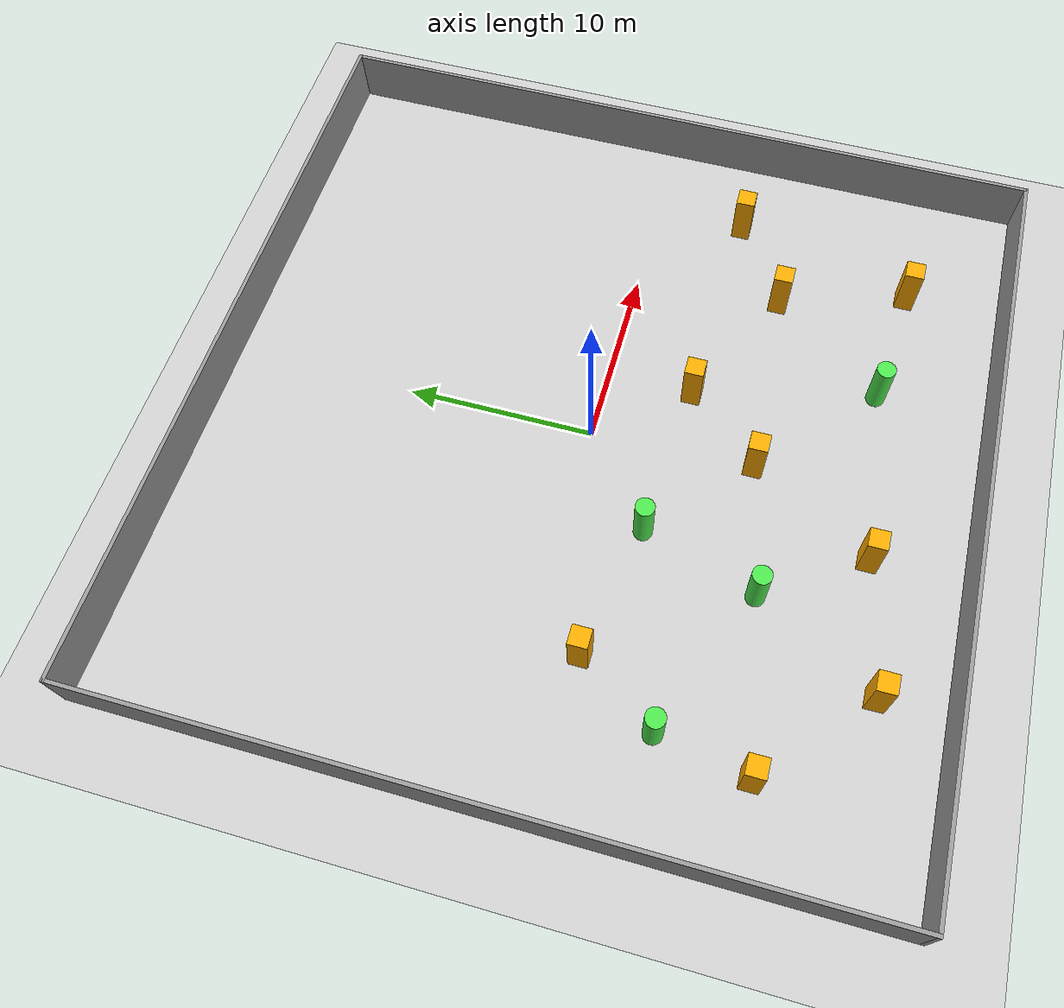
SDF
<sdf version="1.7">
 <world name="default">
  <model name="ground_plane">
   <static>1</static>
   <link name="link">
    <collision name="collision">
     <geometry><plane><normal>0 0 1</normal><size>100 100</size></plane></geometry>
     <surface>
      <contact><collide_bitmask>65535</collide_bitmask></contact>
      <friction><ode><mu>100</mu><mu2>50</mu2></ode></friction>
     </surface>
    </collision>
    <visual name="visual">
     <cast_shadows>0</cast_shadows>
     <geometry><plane><normal>0 0 1</normal><size>100 100</size></plane></geometry>
     <material>
      <script><uri>file://media/materials/scripts/gazebo.material</uri><name>Gazebo/Grey</name></script>
     </material>
    </visual>
   </link>
  </model>
  <model name="Fence40">
   <link name="Wall_11">
    <collision name="Wall_11_Collision">
     <geometry><box><size>0.15 0.15 2.5</size></box></geometry>
     <pose>0 0 1.25 0 -0 0</pose>
    </collision>
    <visual name="Wall_11_Visual">
     <pose>0 0 1.25 0 -0 0</pose>
     <geometry><box><size>0.15 0.15 2.5</size></box></geometry>
     <material>
      <script><uri>file://media/materials/scripts/gazebo.material</uri><name>Gazebo/Grey</name></script>
      <ambient>1 1 1 1</ambient>
     </material>
     <meta><layer>0</layer></meta>
    </visual>
    <pose>20 -20 0 0 -0 0</pose>
   </link>
   <link name="Wall_12">
    <collision name="Wall_12_Collision">
     <geometry><box><size>40.2 0.2 3</size></box></geometry>
     <pose>0 0 1.5 0 -0 0</pose>
    </collision>
    <visual name="Wall_12_Visual">
     <pose>0 0 1.5 0 -0 0</pose>
     <geometry><box><size>40.2 0.2 3</size></box></geometry>
     <material>
      <script><uri>file://media/materials/scripts/gazebo.material</uri><name>Gazebo/Grey</name></script>
      <ambient>1 1 1 1</ambient>
     </material>
     <meta><layer>0</layer></meta>
    </visual>
    <pose>20 0 0 0 -0 1.5708</pose>
   </link>
   <link name="Wall_15">
    <collision name="Wall_15_Collision">
     <geometry><box><size>40.2 0.2 3</size></box></geometry>
     <pose>0 0 1.5 0 -0 0</pose>
    </collision>
    <visual name="Wall_15_Visual">
     <pose>0 0 1.5 0 -0 0</pose>
     <geometry><box><size>40.2 0.2 3</size></box></geometry>
     <material>
      <script><uri>file://media/materials/scripts/gazebo.material</uri><name>Gazebo/Grey</name></script>
      <ambient>1 1 1 1</ambient>
     </material>
     <meta><layer>0</layer></meta>
    </visual>
    <pose>0 -20 0 0 -0 3.14159</pose>
   </link>
   <link name="Wall_16">
    <collision name="Wall_16_Collision">
     <geometry><box><size>40.2 0.2 3</size></box></geometry>
     <pose>0 0 1.5 0 -0 0</pose>
    </collision>
    <visual name="Wall_16_Visual">
     <pose>0 0 1.5 0 -0 0</pose>
     <geometry><box><size>40.2 0.2 3</size></box></geometry>
     <material>
      <script><uri>file://media/materials/scripts/gazebo.material</uri><name>Gazebo/Grey</name></script>
      <ambient>1 1 1 1</ambient>
     </material>
     <meta><layer>0</layer></meta>
    </visual>
    <pose>-20 0 0 0 -0 1.5708</pose>
   </link>
   <link name="Wall_17">
    <collision name="Wall_17_Collision">
     <geometry><box><size>40.2 0.2 3</size></box></geometry>
     <pose>0 0 1.5 0 -0 0</pose>
    </collision>
    <visual name="Wall_17_Visual">
     <pose>0 0 1.5 0 -0 0</pose>
     <geometry><box><size>40.2 0.2 3</size></box></geometry>
     <material>
      <script><uri>file://media/materials/scripts/gazebo.material</uri><name>Gazebo/Grey</name></script>
      <ambient>1 1 1 1</ambient>
     </material>
     <meta><layer>0</layer></meta>
    </visual>
    <pose>0 20 0 0 -0 0</pose>
   </link>
   <static>1</static>
  </model>
  <model name="Pillar_1x3">
   <link name="link_0">
    <inertial>
     <mass>1</mass>
     <inertia><ixx>0.145833</ixx><ixy>0</ixy><ixz>0</ixz><iyy>0.145833</iyy><iyz>0</iyz><izz>0.125</izz></inertia>
    </inertial>
    <pose>0 0 1.5 0 -0 0</pose>
    <kinematic>1</kinematic>
    <visual name="visual">
     <geometry><cylinder><radius>0.5</radius><length>3</length></cylinder></geometry>
     <material>
      <lighting>1</lighting>
      <script><uri>file://media/materials/scripts/gazebo.material</uri><name>Gazebo/Grey</name></script>
      <shader type="pixel"><normal_map>__default__</normal_map></shader>
      <ambient>0.3 0.9 0.3 1</ambient>
      <diffuse>0.7 0.7 0.7 1</diffuse>
      <specular>0.01 0.01 0.01 1</specular>
      <emissive>0 0 0 1</emissive>
     </material>
    </visual>
    <collision name="collision">
     <geometry><cylinder><radius>0.5</radius><length>3</length></cylinder></geometry>
     <surface>
      <friction>
       <ode><mu>1</mu><mu2>1</mu2><fdir1>0 0 0</fdir1><slip1>0</slip1><slip2>0</slip2></ode>
       <torsional>
        <coefficient>1</coefficient>
        <patch_radius>0</patch_radius>
        <surface_radius>0</surface_radius>
        <use_patch_radius>1</use_patch_radius>
        <ode><slip>0</slip></ode>
       </torsional>
      </friction>
      <bounce><restitution_coefficient>0</restitution_coefficient><threshold>1e+06</threshold></bounce>
      <contact>
       <collide_without_contact>0</collide_without_contact>
       <collide_without_contact_bitmask>1</collide_without_contact_bitmask>
       <collide_bitmask>1</collide_bitmask>
       <ode>
        <soft_cfm>0</soft_cfm>
        <soft_erp>0.2</soft_erp>
        <kp>1e+13</kp>
        <kd>1</kd>
        <max_vel>0.01</max_vel>
        <min_depth>0</min_depth>
       </ode>
       <bullet>
        <split_impulse>1</split_impulse>
        <split_impulse_penetration_threshold>-0.01</split_impulse_penetration_threshold>
        <soft_cfm>0</soft_cfm>
        <soft_erp>0.2</soft_erp>
        <kp>1e+13</kp>
        <kd>1</kd>
       </bullet>
      </contact>
     </surface>
    </collision>
   </link>
   <static>0</static>
   <pose>-4.7102 -3.95573 0 0 -0 0</pose>
  </model>
  <model name="Pillar_1x3_clone_2">
   <link name="link_0">
    <inertial>
     <mass>1</mass>
     <inertia><ixx>0.145833</ixx><ixy>0</ixy><ixz>0</ixz><iyy>0.145833</iyy><iyz>0</iyz><izz>0.125</izz></inertia>
    </inertial>
    <pose>0 0 1.5 0 -0 0</pose>
    <kinematic>1</kinematic>
    <visual name="visual">
     <geometry><cylinder><radius>0.5</radius><length>3</length></cylinder></geometry>
     <material>
      <lighting>1</lighting>
      <script><uri>file://media/materials/scripts/gazebo.material</uri><name>Gazebo/Grey</name></script>
      <shader type="pixel"><normal_map>__default__</normal_map></shader>
      <ambient>0.3 0.9 0.3 1</ambient>
      <diffuse>0.7 0.7 0.7 1</diffuse>
      <specular>0.01 0.01 0.01 1</specular>
      <emissive>0 0 0 1</emissive>
     </material>
    </visual>
    <collision name="collision">
     <geometry><cylinder><radius>0.5</radius><length>3</length></cylinder></geometry>
     <surface>
      <friction>
       <ode><mu>1</mu><mu2>1</mu2><fdir1>0 0 0</fdir1><slip1>0</slip1><slip2>0</slip2></ode>
       <torsional>
        <coefficient>1</coefficient>
        <patch_radius>0</patch_radius>
        <surface_radius>0</surface_radius>
        <use_patch_radius>1</use_patch_radius>
        <ode><slip>0</slip></ode>
       </torsional>
      </friction>
      <bounce><restitution_coefficient>0</restitution_coefficient><threshold>1e+06</threshold></bounce>
      <contact>
       <collide_without_contact>0</collide_without_contact>
       <collide_without_contact_bitmask>1</collide_without_contact_bitmask>
       <collide_bitmask>1</collide_bitmask>
       <ode>
        <soft_cfm>0</soft_cfm>
        <soft_erp>0.2</soft_erp>
        <kp>1e+13</kp>
        <kd>1</kd>
        <max_vel>0.01</max_vel>
        <min_depth>0</min_depth>
       </ode>
       <bullet>
        <split_impulse>1</split_impulse>
        <split_impulse_penetration_threshold>-0.01</split_impulse_penetration_threshold>
        <soft_cfm>0</soft_cfm>
        <soft_erp>0.2</soft_erp>
        <kp>1e+13</kp>
        <kd>1</kd>
       </bullet>
      </contact>
     </surface>
    </collision>
   </link>
   <static>0</static>
   <pose>-14.4619 -6.84046 0 0 -0 0</pose>
  </model>
  <model name="Pillar_1x3_clone_5">
   <link name="link_0">
    <inertial>
     <mass>1</mass>
     <inertia><ixx>0.145833</ixx><ixy>0</ixy><ixz>0</ixz><iyy>0.145833</iyy><iyz>0</iyz><izz>0.125</izz></inertia>
    </inertial>
    <pose>0 0 1.5 0 -0 0</pose>
    <kinematic>1</kinematic>
    <visual name="visual">
     <geometry><cylinder><radius>0.5</radius><length>3</length></cylinder></geometry>
     <material>
      <lighting>1</lighting>
      <script><uri>file://media/materials/scripts/gazebo.material</uri><name>Gazebo/Grey</name></script>
      <shader type="pixel"><normal_map>__default__</normal_map></shader>
      <ambient>0.3 0.9 0.3 1</ambient>
      <diffuse>0.7 0.7 0.7 1</diffuse>
      <specular>0.01 0.01 0.01 1</specular>
      <emissive>0 0 0 1</emissive>
     </material>
    </visual>
    <collision name="collision">
     <geometry><cylinder><radius>0.5</radius><length>3</length></cylinder></geometry>
     <surface>
      <friction>
       <ode><mu>1</mu><mu2>1</mu2><fdir1>0 0 0</fdir1><slip1>0</slip1><slip2>0</slip2></ode>
       <torsional>
        <coefficient>1</coefficient>
        <patch_radius>0</patch_radius>
        <surface_radius>0</surface_radius>
        <use_patch_radius>1</use_patch_radius>
        <ode><slip>0</slip></ode>
       </torsional>
      </friction>
      <bounce><restitution_coefficient>0</restitution_coefficient><threshold>1e+06</threshold></bounce>
      <contact>
       <collide_without_contact>0</collide_without_contact>
       <collide_without_contact_bitmask>1</collide_without_contact_bitmask>
       <collide_bitmask>1</collide_bitmask>
       <ode>
        <soft_cfm>0</soft_cfm>
        <soft_erp>0.2</soft_erp>
        <kp>1e+13</kp>
        <kd>1</kd>
        <max_vel>0.01</max_vel>
        <min_depth>0</min_depth>
       </ode>
       <bullet>
        <split_impulse>1</split_impulse>
        <split_impulse_penetration_threshold>-0.01</split_impulse_penetration_threshold>
        <soft_cfm>0</soft_cfm>
        <soft_erp>0.2</soft_erp>
        <kp>1e+13</kp>
        <kd>1</kd>
       </bullet>
      </contact>
     </surface>
    </collision>
   </link>
   <static>0</static>
   <pose>6.0871 -14.1052 0 0 -0 0</pose>
  </model>
  <model name="Pillar_1x3_clone_6">
   <link name="link_0">
    <inertial>
     <mass>1</mass>
     <inertia><ixx>0.145833</ixx><ixy>0</ixy><ixz>0</ixz><iyy>0.145833</iyy><iyz>0</iyz><izz>0.125</izz></inertia>
    </inertial>
    <pose>0 0 1.5 0 -0 0</pose>
    <kinematic>1</kinematic>
    <visual name="visual">
     <geometry><cylinder><radius>0.5</radius><length>3</length></cylinder></geometry>
     <material>
      <lighting>1</lighting>
      <script><uri>file://media/materials/scripts/gazebo.material</uri><name>Gazebo/Grey</name></script>
      <shader type="pixel"><normal_map>__default__</normal_map></shader>
      <ambient>0.3 0.9 0.3 1</ambient>
      <diffuse>0.7 0.7 0.7 1</diffuse>
      <specular>0.01 0.01 0.01 1</specular>
      <emissive>0 0 0 1</emissive>
     </material>
    </visual>
    <collision name="collision">
     <geometry><cylinder><radius>0.5</radius><length>3</length></cylinder></geometry>
     <surface>
      <friction>
       <ode><mu>1</mu><mu2>1</mu2><fdir1>0 0 0</fdir1><slip1>0</slip1><slip2>0</slip2></ode>
       <torsional>
        <coefficient>1</coefficient>
        <patch_radius>0</patch_radius>
        <surface_radius>0</surface_radius>
        <use_patch_radius>1</use_patch_radius>
        <ode><slip>0</slip></ode>
       </torsional>
      </friction>
      <bounce><restitution_coefficient>0</restitution_coefficient><threshold>1e+06</threshold></bounce>
      <contact>
       <collide_without_contact>0</collide_without_contact>
       <collide_without_contact_bitmask>1</collide_without_contact_bitmask>
       <collide_bitmask>1</collide_bitmask>
       <ode>
        <soft_cfm>0</soft_cfm>
        <soft_erp>0.2</soft_erp>
        <kp>1e+13</kp>
        <kd>1</kd>
        <max_vel>0.01</max_vel>
        <min_depth>0</min_depth>
       </ode>
       <bullet>
        <split_impulse>1</split_impulse>
        <split_impulse_penetration_threshold>-0.01</split_impulse_penetration_threshold>
        <soft_cfm>0</soft_cfm>
        <soft_erp>0.2</soft_erp>
        <kp>1e+13</kp>
        <kd>1</kd>
       </bullet>
      </contact>
     </surface>
    </collision>
   </link>
   <static>0</static>
   <pose>-6.65509 -10.0953 0 0 -0 0</pose>
  </model>
  <model name="Box1x1x3">
   <link name="link_0">
    <inertial>
     <mass>1</mass>
     <inertia>
      <ixx>0.166667</ixx>
      <ixy>0</ixy>
      <ixz>0</ixz>
      <iyy>0.166667</iyy>
      <iyz>0</iyz>
      <izz>0.166667</izz>
     </inertia>
    </inertial>
    <pose>0 0 1.5 0 -0 0</pose>
    <kinematic>1</kinematic>
    <visual name="visual">
     <geometry><box><size>1 1 3</size></box></geometry>
     <material>
      <lighting>1</lighting>
      <script><uri>file://media/materials/scripts/gazebo.material</uri><name>Gazebo/Grey</name></script>
      <shader type="pixel"><normal_map>__default__</normal_map></shader>
      <ambient>1 0.667 0 1</ambient>
      <diffuse>0.7 0.7 0.7 1</diffuse>
      <specular>0.01 0.01 0.01 1</specular>
      <emissive>0 0 0 1</emissive>
     </material>
    </visual>
    <collision name="collision">
     <geometry><box><size>1 1 3</size></box></geometry>
     <surface>
      <friction>
       <ode><mu>1</mu><mu2>1</mu2><fdir1>0 0 0</fdir1><slip1>0</slip1><slip2>0</slip2></ode>
       <torsional>
        <coefficient>1</coefficient>
        <patch_radius>0</patch_radius>
        <surface_radius>0</surface_radius>
        <use_patch_radius>1</use_patch_radius>
        <ode><slip>0</slip></ode>
       </torsional>
      </friction>
      <bounce><restitution_coefficient>0</restitution_coefficient><threshold>1e+06</threshold></bounce>
      <contact>
       <collide_without_contact>0</collide_without_contact>
       <collide_without_contact_bitmask>1</collide_without_contact_bitmask>
       <collide_bitmask>1</collide_bitmask>
       <ode>
        <soft_cfm>0</soft_cfm>
        <soft_erp>0.2</soft_erp>
        <kp>1e+13</kp>
        <kd>1</kd>
        <max_vel>0.01</max_vel>
        <min_depth>0</min_depth>
       </ode>
       <bullet>
        <split_impulse>1</split_impulse>
        <split_impulse_penetration_threshold>-0.01</split_impulse_penetration_threshold>
        <soft_cfm>0</soft_cfm>
        <soft_erp>0.2</soft_erp>
        <kp>1e+13</kp>
        <kd>1</kd>
       </bullet>
      </contact>
     </surface>
    </collision>
   </link>
   <static>0</static>
   <pose>3.69067 -4.57421 0 0 -0 0</pose>
  </model>
  <model name="Box1x1x3_clone">
   <link name="link_0">
    <inertial>
     <mass>1</mass>
     <inertia>
      <ixx>0.166667</ixx>
      <ixy>0</ixy>
      <ixz>0</ixz>
      <iyy>0.166667</iyy>
      <iyz>0</iyz>
      <izz>0.166667</izz>
     </inertia>
    </inertial>
    <pose>0 0 1.5 0 -0 0</pose>
    <kinematic>1</kinematic>
    <visual name="visual">
     <geometry><box><size>1 1 3</size></box></geometry>
     <material>
      <lighting>1</lighting>
      <script><uri>file://media/materials/scripts/gazebo.material</uri><name>Gazebo/Grey</name></script>
      <shader type="pixel"><normal_map>__default__</normal_map></shader>
      <ambient>1 0.667 0 1</ambient>
      <diffuse>0.7 0.7 0.7 1</diffuse>
      <specular>0.01 0.01 0.01 1</specular>
      <emissive>0 0 0 1</emissive>
     </material>
    </visual>
    <collision name="collision">
     <geometry><box><size>1 1 3</size></box></geometry>
     <surface>
      <friction>
       <ode><mu>1</mu><mu2>1</mu2><fdir1>0 0 0</fdir1><slip1>0</slip1><slip2>0</slip2></ode>
       <torsional>
        <coefficient>1</coefficient>
        <patch_radius>0</patch_radius>
        <surface_radius>0</surface_radius>
        <use_patch_radius>1</use_patch_radius>
        <ode><slip>0</slip></ode>
       </torsional>
      </friction>
      <bounce><restitution_coefficient>0</restitution_coefficient><threshold>1e+06</threshold></bounce>
      <contact>
       <collide_without_contact>0</collide_without_contact>
       <collide_without_contact_bitmask>1</collide_without_contact_bitmask>
       <collide_bitmask>1</collide_bitmask>
       <ode>
        <soft_cfm>0</soft_cfm>
        <soft_erp>0.2</soft_erp>
        <kp>1e+13</kp>
        <kd>1</kd>
        <max_vel>0.01</max_vel>
        <min_depth>0</min_depth>
       </ode>
       <bullet>
        <split_impulse>1</split_impulse>
        <split_impulse_penetration_threshold>-0.01</split_impulse_penetration_threshold>
        <soft_cfm>0</soft_cfm>
        <soft_erp>0.2</soft_erp>
        <kp>1e+13</kp>
        <kd>1</kd>
       </bullet>
      </contact>
     </surface>
    </collision>
   </link>
   <static>0</static>
   <pose>-3.40503 -15.12 0 0 -0 0</pose>
  </model>
  <model name="Box1x1x3_clone_0">
   <link name="link_0">
    <inertial>
     <mass>1</mass>
     <inertia>
      <ixx>0.166667</ixx>
      <ixy>0</ixy>
      <ixz>0</ixz>
      <iyy>0.166667</iyy>
      <iyz>0</iyz>
      <izz>0.166667</izz>
     </inertia>
    </inertial>
    <pose>0 0 1.5 0 -0 0</pose>
    <kinematic>1</kinematic>
    <visual name="visual">
     <geometry><box><size>1 1 3</size></box></geometry>
     <material>
      <lighting>1</lighting>
      <script><uri>file://media/materials/scripts/gazebo.material</uri><name>Gazebo/Grey</name></script>
      <shader type="pixel"><normal_map>__default__</normal_map></shader>
      <ambient>1 0.667 0 1</ambient>
      <diffuse>0.7 0.7 0.7 1</diffuse>
      <specular>0.01 0.01 0.01 1</specular>
      <emissive>0 0 0 1</emissive>
     </material>
    </visual>
    <collision name="collision">
     <geometry><box><size>1 1 3</size></box></geometry>
     <surface>
      <friction>
       <ode><mu>1</mu><mu2>1</mu2><fdir1>0 0 0</fdir1><slip1>0</slip1><slip2>0</slip2></ode>
       <torsional>
        <coefficient>1</coefficient>
        <patch_radius>0</patch_radius>
        <surface_radius>0</surface_radius>
        <use_patch_radius>1</use_patch_radius>
        <ode><slip>0</slip></ode>
       </torsional>
      </friction>
      <bounce><restitution_coefficient>0</restitution_coefficient><threshold>1e+06</threshold></bounce>
      <contact>
       <collide_without_contact>0</collide_without_contact>
       <collide_without_contact_bitmask>1</collide_without_contact_bitmask>
       <collide_bitmask>1</collide_bitmask>
       <ode>
        <soft_cfm>0</soft_cfm>
        <soft_erp>0.2</soft_erp>
        <kp>1e+13</kp>
        <kd>1</kd>
        <max_vel>0.01</max_vel>
        <min_depth>0</min_depth>
       </ode>
       <bullet>
        <split_impulse>1</split_impulse>
        <split_impulse_penetration_threshold>-0.01</split_impulse_penetration_threshold>
        <soft_cfm>0</soft_cfm>
        <soft_erp>0.2</soft_erp>
        <kp>1e+13</kp>
        <kd>1</kd>
       </bullet>
      </contact>
     </surface>
    </collision>
   </link>
   <static>0</static>
   <pose>-11.7718 -2.63888 0 0 -0 0</pose>
  </model>
  <model name="Box1x1x3_clone_4">
   <link name="link_0">
    <inertial>
     <mass>1</mass>
     <inertia>
      <ixx>0.166667</ixx>
      <ixy>0</ixy>
      <ixz>0</ixz>
      <iyy>0.166667</iyy>
      <iyz>0</iyz>
      <izz>0.166667</izz>
     </inertia>
    </inertial>
    <pose>0 0 1.5 0 -0 0</pose>
    <kinematic>1</kinematic>
    <visual name="visual">
     <geometry><box><size>1 1 3</size></box></geometry>
     <material>
      <lighting>1</lighting>
      <script><uri>file://media/materials/scripts/gazebo.material</uri><name>Gazebo/Grey</name></script>
      <shader type="pixel"><normal_map>__default__</normal_map></shader>
      <ambient>1 0.667 0 1</ambient>
      <diffuse>0.7 0.7 0.7 1</diffuse>
      <specular>0.01 0.01 0.01 1</specular>
      <emissive>0 0 0 1</emissive>
     </material>
    </visual>
    <collision name="collision">
     <geometry><box><size>1 1 3</size></box></geometry>
     <surface>
      <friction>
       <ode><mu>1</mu><mu2>1</mu2><fdir1>0 0 0</fdir1><slip1>0</slip1><slip2>0</slip2></ode>
       <torsional>
        <coefficient>1</coefficient>
        <patch_radius>0</patch_radius>
        <surface_radius>0</surface_radius>
        <use_patch_radius>1</use_patch_radius>
        <ode><slip>0</slip></ode>
       </torsional>
      </friction>
      <bounce><restitution_coefficient>0</restitution_coefficient><threshold>1e+06</threshold></bounce>
      <contact>
       <collide_without_contact>0</collide_without_contact>
       <collide_without_contact_bitmask>1</collide_without_contact_bitmask>
       <collide_bitmask>1</collide_bitmask>
       <ode>
        <soft_cfm>0</soft_cfm>
        <soft_erp>0.2</soft_erp>
        <kp>1e+13</kp>
        <kd>1</kd>
        <max_vel>0.01</max_vel>
        <min_depth>0</min_depth>
       </ode>
       <bullet>
        <split_impulse>1</split_impulse>
        <split_impulse_penetration_threshold>-0.01</split_impulse_penetration_threshold>
        <soft_cfm>0</soft_cfm>
        <soft_erp>0.2</soft_erp>
        <kp>1e+13</kp>
        <kd>1</kd>
       </bullet>
      </contact>
     </surface>
    </collision>
   </link>
   <static>0</static>
   <pose>-10.2052 -16.5184 0 0 -0 0</pose>
  </model>
  <model name="Box1x1x3_clone_6">
   <link name="link_0">
    <inertial>
     <mass>1</mass>
     <inertia>
      <ixx>0.166667</ixx>
      <ixy>0</ixy>
      <ixz>0</ixz>
      <iyy>0.166667</iyy>
      <iyz>0</iyz>
      <izz>0.166667</izz>
     </inertia>
    </inertial>
    <pose>0 0 1.5 0 -0 0</pose>
    <kinematic>1</kinematic>
    <visual name="visual">
     <geometry><box><size>1 1 3</size></box></geometry>
     <material>
      <lighting>1</lighting>
      <script><uri>file://media/materials/scripts/gazebo.material</uri><name>Gazebo/Grey</name></script>
      <shader type="pixel"><normal_map>__default__</normal_map></shader>
      <ambient>1 0.667 0 1</ambient>
      <diffuse>0.7 0.7 0.7 1</diffuse>
      <specular>0.01 0.01 0.01 1</specular>
      <emissive>0 0 0 1</emissive>
     </material>
    </visual>
    <collision name="collision">
     <geometry><box><size>1 1 3</size></box></geometry>
     <surface>
      <friction>
       <ode><mu>1</mu><mu2>1</mu2><fdir1>0 0 0</fdir1><slip1>0</slip1><slip2>0</slip2></ode>
       <torsional>
        <coefficient>1</coefficient>
        <patch_radius>0</patch_radius>
        <surface_radius>0</surface_radius>
        <use_patch_radius>1</use_patch_radius>
        <ode><slip>0</slip></ode>
       </torsional>
      </friction>
      <bounce><restitution_coefficient>0</restitution_coefficient><threshold>1e+06</threshold></bounce>
      <contact>
       <collide_without_contact>0</collide_without_contact>
       <collide_without_contact_bitmask>1</collide_without_contact_bitmask>
       <collide_bitmask>1</collide_bitmask>
       <ode>
        <soft_cfm>0</soft_cfm>
        <soft_erp>0.2</soft_erp>
        <kp>1e+13</kp>
        <kd>1</kd>
        <max_vel>0.01</max_vel>
        <min_depth>0</min_depth>
       </ode>
       <bullet>
        <split_impulse>1</split_impulse>
        <split_impulse_penetration_threshold>-0.01</split_impulse_penetration_threshold>
        <soft_cfm>0</soft_cfm>
        <soft_erp>0.2</soft_erp>
        <kp>1e+13</kp>
        <kd>1</kd>
       </bullet>
      </contact>
     </surface>
    </collision>
   </link>
   <static>0</static>
   <pose>10.6856 -7.93072 0 0 -0 0</pose>
  </model>
  <model name="Box1x1x3_clone_9">
   <link name="link_0">
    <inertial>
     <mass>1</mass>
     <inertia>
      <ixx>0.166667</ixx>
      <ixy>0</ixy>
      <ixz>0</ixz>
      <iyy>0.166667</iyy>
      <iyz>0</iyz>
      <izz>0.166667</izz>
     </inertia>
    </inertial>
    <pose>0 0 1.5 0 -0 0</pose>
    <kinematic>1</kinematic>
    <visual name="visual">
     <geometry><box><size>1 1 3</size></box></geometry>
     <material>
      <lighting>1</lighting>
      <script><uri>file://media/materials/scripts/gazebo.material</uri><name>Gazebo/Grey</name></script>
      <shader type="pixel"><normal_map>__default__</normal_map></shader>
      <ambient>1 0.667 0 1</ambient>
      <diffuse>0.7 0.7 0.7 1</diffuse>
      <specular>0.01 0.01 0.01 1</specular>
      <emissive>0 0 0 1</emissive>
     </material>
    </visual>
    <collision name="collision">
     <geometry><box><size>1 1 3</size></box></geometry>
     <surface>
      <friction>
       <ode><mu>1</mu><mu2>1</mu2><fdir1>0 0 0</fdir1><slip1>0</slip1><slip2>0</slip2></ode>
       <torsional>
        <coefficient>1</coefficient>
        <patch_radius>0</patch_radius>
        <surface_radius>0</surface_radius>
        <use_patch_radius>1</use_patch_radius>
        <ode><slip>0</slip></ode>
       </torsional>
      </friction>
      <bounce><restitution_coefficient>0</restitution_coefficient><threshold>1e+06</threshold></bounce>
      <contact>
       <collide_without_contact>0</collide_without_contact>
       <collide_without_contact_bitmask>1</collide_without_contact_bitmask>
       <collide_bitmask>1</collide_bitmask>
       <ode>
        <soft_cfm>0</soft_cfm>
        <soft_erp>0.2</soft_erp>
        <kp>1e+13</kp>
        <kd>1</kd>
        <max_vel>0.01</max_vel>
        <min_depth>0</min_depth>
       </ode>
       <bullet>
        <split_impulse>1</split_impulse>
        <split_impulse_penetration_threshold>-0.01</split_impulse_penetration_threshold>
        <soft_cfm>0</soft_cfm>
        <soft_erp>0.2</soft_erp>
        <kp>1e+13</kp>
        <kd>1</kd>
       </bullet>
      </contact>
     </surface>
    </collision>
   </link>
   <static>0</static>
   <pose>12.7904 -14.7247 0 0 -0 0</pose>
  </model>
  <model name="Box1x1x3_clone_10">
   <link name="link_0">
    <inertial>
     <mass>1</mass>
     <inertia>
      <ixx>0.166667</ixx>
      <ixy>0</ixy>
      <ixz>0</ixz>
      <iyy>0.166667</iyy>
      <iyz>0</iyz>
      <izz>0.166667</izz>
     </inertia>
    </inertial>
    <pose>0 0 1.5 0 -0 0</pose>
    <kinematic>1</kinematic>
    <visual name="visual">
     <geometry><box><size>1 1 3</size></box></geometry>
     <material>
      <lighting>1</lighting>
      <script><uri>file://media/materials/scripts/gazebo.material</uri><name>Gazebo/Grey</name></script>
      <shader type="pixel"><normal_map>__default__</normal_map></shader>
      <ambient>1 0.667 0 1</ambient>
      <diffuse>0.7 0.7 0.7 1</diffuse>
      <specular>0.01 0.01 0.01 1</specular>
      <emissive>0 0 0 1</emissive>
     </material>
    </visual>
    <collision name="collision">
     <geometry><box><size>1 1 3</size></box></geometry>
     <surface>
      <friction>
       <ode><mu>1</mu><mu2>1</mu2><fdir1>0 0 0</fdir1><slip1>0</slip1><slip2>0</slip2></ode>
       <torsional>
        <coefficient>1</coefficient>
        <patch_radius>0</patch_radius>
        <surface_radius>0</surface_radius>
        <use_patch_radius>1</use_patch_radius>
        <ode><slip>0</slip></ode>
       </torsional>
      </friction>
      <bounce><restitution_coefficient>0</restitution_coefficient><threshold>1e+06</threshold></bounce>
      <contact>
       <collide_without_contact>0</collide_without_contact>
       <collide_without_contact_bitmask>1</collide_without_contact_bitmask>
       <collide_bitmask>1</collide_bitmask>
       <ode>
        <soft_cfm>0</soft_cfm>
        <soft_erp>0.2</soft_erp>
        <kp>1e+13</kp>
        <kd>1</kd>
        <max_vel>0.01</max_vel>
        <min_depth>0</min_depth>
       </ode>
       <bullet>
        <split_impulse>1</split_impulse>
        <split_impulse_penetration_threshold>-0.01</split_impulse_penetration_threshold>
        <soft_cfm>0</soft_cfm>
        <soft_erp>0.2</soft_erp>
        <kp>1e+13</kp>
        <kd>1</kd>
       </bullet>
      </contact>
     </surface>
    </collision>
   </link>
   <static>0</static>
   <pose>0.251488 -8.62002 0 0 -0 0</pose>
  </model>
  <model name="Box1x1x3_clone_11">
   <link name="link_0">
    <inertial>
     <mass>1</mass>
     <inertia>
      <ixx>0.166667</ixx>
      <ixy>0</ixy>
      <ixz>0</ixz>
      <iyy>0.166667</iyy>
      <iyz>0</iyz>
      <izz>0.166667</izz>
     </inertia>
    </inertial>
    <pose>0 0 1.5 0 -0 0</pose>
    <kinematic>1</kinematic>
    <visual name="visual">
     <geometry><box><size>1 1 3</size></box></geometry>
     <material>
      <lighting>1</lighting>
      <script><uri>file://media/materials/scripts/gazebo.material</uri><name>Gazebo/Grey</name></script>
      <shader type="pixel"><normal_map>__default__</normal_map></shader>
      <ambient>1 0.667 0 1</ambient>
      <diffuse>0.7 0.7 0.7 1</diffuse>
      <specular>0.01 0.01 0.01 1</specular>
      <emissive>0 0 0 1</emissive>
     </material>
    </visual>
    <collision name="collision">
     <geometry><box><size>1 1 3</size></box></geometry>
     <surface>
      <friction>
       <ode><mu>1</mu><mu2>1</mu2><fdir1>0 0 0</fdir1><slip1>0</slip1><slip2>0</slip2></ode>
       <torsional>
        <coefficient>1</coefficient>
        <patch_radius>0</patch_radius>
        <surface_radius>0</surface_radius>
        <use_patch_radius>1</use_patch_radius>
        <ode><slip>0</slip></ode>
       </torsional>
      </friction>
      <bounce><restitution_coefficient>0</restitution_coefficient><threshold>1e+06</threshold></bounce>
      <contact>
       <collide_without_contact>0</collide_without_contact>
       <collide_without_contact_bitmask>1</collide_without_contact_bitmask>
       <collide_bitmask>1</collide_bitmask>
       <ode>
        <soft_cfm>0</soft_cfm>
        <soft_erp>0.2</soft_erp>
        <kp>1e+13</kp>
        <kd>1</kd>
        <max_vel>0.01</max_vel>
        <min_depth>0</min_depth>
       </ode>
       <bullet>
        <split_impulse>1</split_impulse>
        <split_impulse_penetration_threshold>-0.01</split_impulse_penetration_threshold>
        <soft_cfm>0</soft_cfm>
        <soft_erp>0.2</soft_erp>
        <kp>1e+13</kp>
        <kd>1</kd>
       </bullet>
      </contact>
     </surface>
    </collision>
   </link>
   <static>0</static>
   <pose>-15.3407 -11.5957 0 0 -0 0</pose>
  </model>
  <model name="Box1x1x3_clone_12">
   <link name="link_0">
    <inertial>
     <mass>1</mass>
     <inertia>
      <ixx>0.166667</ixx>
      <ixy>0</ixy>
      <ixz>0</ixz>
      <iyy>0.166667</iyy>
      <iyz>0</iyz>
      <izz>0.166667</izz>
     </inertia>
    </inertial>
    <pose>0 0 1.5 0 -0 0</pose>
    <kinematic>1</kinematic>
    <visual name="visual">
     <geometry><box><size>1 1 3</size></box></geometry>
     <material>
      <lighting>1</lighting>
      <script><uri>file://media/materials/scripts/gazebo.material</uri><name>Gazebo/Grey</name></script>
      <shader type="pixel"><normal_map>__default__</normal_map></shader>
      <ambient>1 0.667 0 1</ambient>
      <diffuse>0.7 0.7 0.7 1</diffuse>
      <specular>0.01 0.01 0.01 1</specular>
      <emissive>0 0 0 1</emissive>
     </material>
    </visual>
    <collision name="collision">
     <geometry><box><size>1 1 3</size></box></geometry>
     <surface>
      <friction>
       <ode><mu>1</mu><mu2>1</mu2><fdir1>0 0 0</fdir1><slip1>0</slip1><slip2>0</slip2></ode>
       <torsional>
        <coefficient>1</coefficient>
        <patch_radius>0</patch_radius>
        <surface_radius>0</surface_radius>
        <use_patch_radius>1</use_patch_radius>
        <ode><slip>0</slip></ode>
       </torsional>
      </friction>
      <bounce><restitution_coefficient>0</restitution_coefficient><threshold>1e+06</threshold></bounce>
      <contact>
       <collide_without_contact>0</collide_without_contact>
       <collide_without_contact_bitmask>1</collide_without_contact_bitmask>
       <collide_bitmask>1</collide_bitmask>
       <ode>
        <soft_cfm>0</soft_cfm>
        <soft_erp>0.2</soft_erp>
        <kp>1e+13</kp>
        <kd>1</kd>
        <max_vel>0.01</max_vel>
        <min_depth>0</min_depth>
       </ode>
       <bullet>
        <split_impulse>1</split_impulse>
        <split_impulse_penetration_threshold>-0.01</split_impulse_penetration_threshold>
        <soft_cfm>0</soft_cfm>
        <soft_erp>0.2</soft_erp>
        <kp>1e+13</kp>
        <kd>1</kd>
       </bullet>
      </contact>
     </surface>
    </collision>
   </link>
   <static>0</static>
   <pose>15.3102 -4.91042 0 0 -0 0</pose>
  </model>
 </world>
</sdf>
